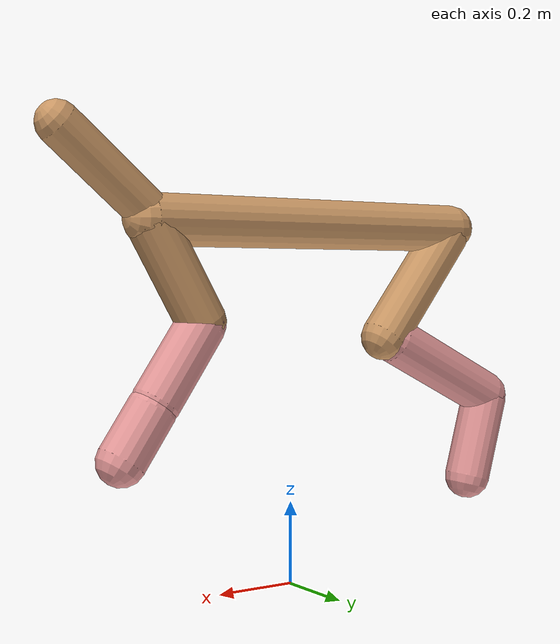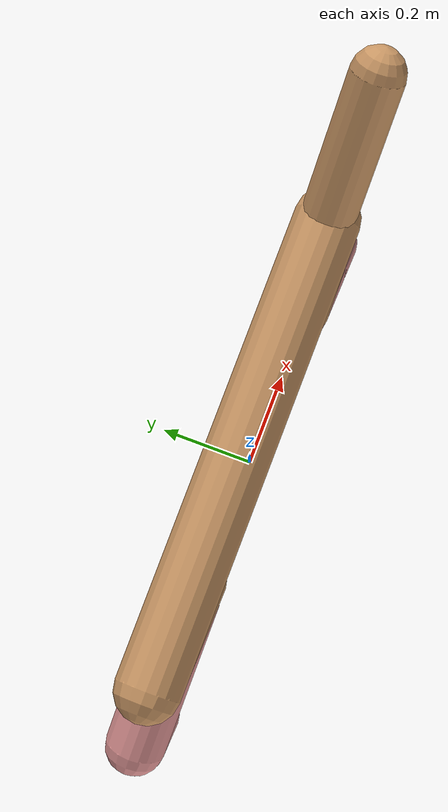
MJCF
<mujoco model="cheetah">
  <compiler angle="radian" coordinate="local" inertiafromgeom="true" settotalmass="14" />
  <default>
    <joint armature=".1" damping=".01" limited="true" solimplimit="0 .8 .03" solreflimit=".02 1" stiffness="8" />
    <geom conaffinity="0" condim="3" contype="1" friction="0.8 .1 .1" rgba="0.8 0.6 .4 1" solimp="0.0 0.8 0.01" solref="0.02 1" />
    <motor ctrllimited="true" ctrlrange="-1 1" />
  </default>
  <size nstack="300000" nuser_geom="1" />
  <option gravity="0 0 -9.81" timestep="0.01" />
  <worldbody>
    <body name="torso" pos="0.0 0.0 0.8692349906392116">
      <joint armature="0" axis="1 0 0" damping="0" limited="false" name="ignorex" pos="0 0 0" stiffness="0" type="slide" />
      <joint armature="0" axis="0 0 1" damping="0" limited="false" name="ignorez" pos="0 0 0" stiffness="0" type="slide" />
      <joint armature="0" axis="0 1 0" damping="0" limited="false" name="ignorey" pos="0 0 0" stiffness="0" type="hinge" />
      <geom fromto="-0.5 0.0 0.0 0.37807303962771444 0.0 0.0" name="torso" size="0.059711970123810264" type="capsule" />
      <geom axisangle="0 1 0 .87" name="head" pos="0.4780730396277144 0.0 0.1" size="0.049478469824929164 0.15" type="capsule" />

      <body name="bthigh" pos="-.5 0 0">
        <joint axis="0 1 0" damping="6" name="bthigh" pos="0 0 0" range="-.52 1.05" stiffness="240" type="hinge" />
        <geom axisangle="0 1 0 -3.8" name="bthigh" pos="0.11267943835697333 0.0 -0.14648326986406532" size="0.05871574967756509 0.16579582512092006" type="capsule" />
        <body name="bshin" pos="0.18535887671394666 0.0 -0.28296653972813063">
          <joint axis="0 1 0" damping="4.5" name="bshin" pos="0 0 0" range="-.785 .785" stiffness="180" type="hinge" />
          <geom axisangle="0 1 0 -2.03" name="bshin" pos="-0.15924174287665177 0.0 -0.07962087143832589" rgba="0.9 0.6 0.6 1" size="0.05871574967756509 0.1715129225388828" type="capsule" />
          <body name="bfoot" pos="-0.31848348575330354 0.0 -0.15924174287665177">
            <joint axis="0 1 0" damping="3" name="bfoot" pos="0 0 0" range="-.4 .785" stiffness="120" type="hinge" />
            <geom axisangle="0 1 0 -.27" name="bfoot" pos="0.03398335481739944 0.0 -0.10987951390959153" rgba="0.9 0.6 0.6 1" size="0.05871574967756509 0.10748143145769991" type="capsule" />
            <inertial mass="10" />
          </body>
        </body>
      </body>
      <body name="fthigh" pos="0.37807303962771444 0.0 0.0">
        <joint axis="0 1 0" damping="4.5" name="fthigh" pos="0 0 0" range="-1.5 0.8" stiffness="180" type="hinge" />
        <geom axisangle="0 1 0 .52" name="fthigh" pos="-0.06836183983459829 0.0 -0.1171917254307399" size="0.058419497661542724 0.12974885023662983" type="capsule" />
        <body name="fshin" pos="-0.13672367966919657 0.0 -0.2343834508614798">
          <joint axis="0 1 0" damping="3" name="fshin" pos="0 0 0" range="-1.2 1.1" stiffness="120" type="hinge" />
          <geom axisangle="0 1 0 -.6" name="fshin" pos="0.06348291088411899 0.0 -0.08789941507031859" rgba="0.9 0.6 0.6 1" size="0.058419497661542724 0.10340885808332903" type="capsule" />
          <body name="ffoot" pos="0.12696582176823798 0.0 -0.17579883014063719">
            <joint axis="0 1 0" damping="1.5" name="ffoot" pos="0 0 0" range="-3.1 -0.3" stiffness="60" type="hinge" />
            <geom axisangle="0 1 0 -.6" name="ffoot" pos="0.04407469267629499 0.0 -0.06856063305201444" rgba="0.9 0.6 0.6 1" size="0.058419497661542724 0.06828886854559466" type="capsule" />
            <inertial mass="10" />
          </body>
        </body>
      </body>
    </body>
  </worldbody>
  <actuator>
    <motor gear="120" joint="bthigh" name="bthigh" />
    <motor gear="90" joint="bshin" name="bshin" />
    <motor gear="60" joint="bfoot" name="bfoot" />
    <motor gear="120" joint="fthigh" name="fthigh" />
    <motor gear="60" joint="fshin" name="fshin" />
    <motor gear="30" joint="ffoot" name="ffoot" />
  </actuator>
</mujoco>
